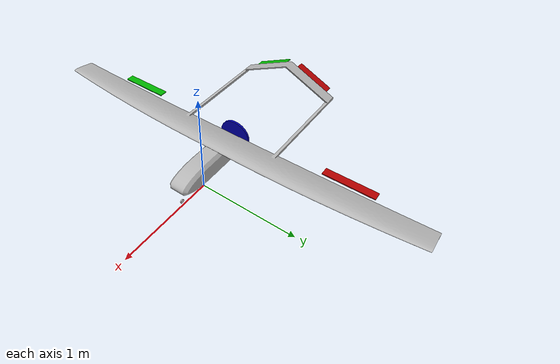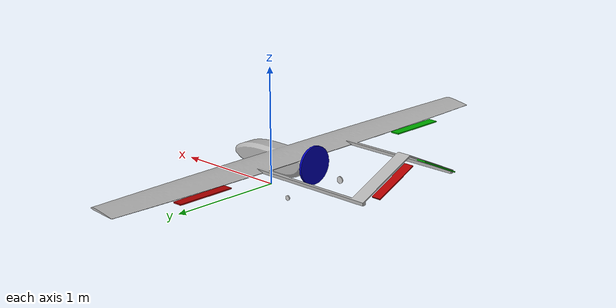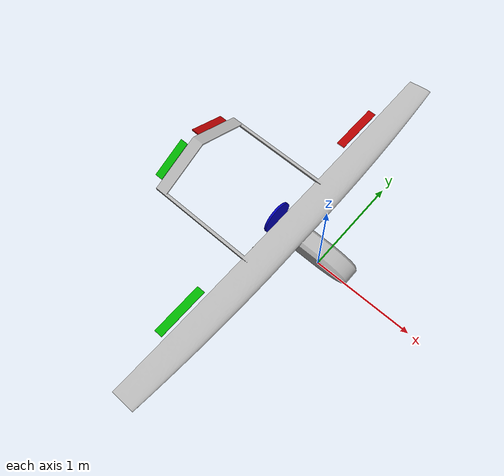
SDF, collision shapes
<?xml version='1.0'?>
<sdf version='1.7'>
  <model name='ifsys'>
    <link name='base_link'>
      <inertial>
        <mass>7</mass>
        <pose>-0.63 0 0.1 0 0 0</pose>
        <inertia>
          <ixx>3</ixx>
          <ixy>0</ixy>
          <ixz>-0.2</ixz>
          <iyy>1.1</iyy>
          <iyz>0</iyz>
          <izz>4</izz>
        </inertia>
      </inertial>
      <pose>0.35 0 0.1 0 0 0</pose>
      <gravity>1</gravity>
      <self_collide>0</self_collide>
      <kinematic>0</kinematic>
      <enable_wind>0</enable_wind>
      <visual name='visual'>
        <pose>0 0 0 0 -0 0</pose>
        <geometry>
          <mesh>
            <uri>./meshes/ifsys.dae</uri>
            <scale>1 1 1</scale>
          </mesh>
        </geometry>
        <material>
          <lighting>1</lighting>
          <ambient>0.3 0.3 0.3 1</ambient>
          <diffuse>0.7 0.7 0.7 1</diffuse>
          <specular>0.01 0.01 0.01 1</specular>
          <emissive>0 0 0 1</emissive>
        </material>
        <transparency>0</transparency>
        <cast_shadows>1</cast_shadows>
      </visual>
      <collision name='collision'>
        <laser_retro>0</laser_retro>
        <max_contacts>10</max_contacts>
        <pose>0 0 0 0 0 0</pose>
        <geometry>
          <mesh>
            <uri>./meshes/ifsys.dae</uri>
            <scale>1 1 1</scale>
          </mesh>
        </geometry>
        <surface>
          <friction>
            <ode>
              <mu>0.1</mu>
              <mu2>0.1</mu2>
              <fdir1>0 0 0</fdir1>
              <slip1>0</slip1>
              <slip2>0</slip2>
            </ode>
            <torsional>
              <coefficient>1</coefficient>
              <patch_radius>0</patch_radius>
              <surface_radius>0</surface_radius>
              <use_patch_radius>1</use_patch_radius>
              <ode>
                <slip>0</slip>
              </ode>
            </torsional>
          </friction>
          <bounce>
            <restitution_coefficient>0</restitution_coefficient>
            <threshold>1e+06</threshold>
          </bounce>
          <contact>
            <collide_without_contact>0</collide_without_contact>
            <collide_without_contact_bitmask>1</collide_without_contact_bitmask>
            <collide_bitmask>1</collide_bitmask>
            <ode>
              <soft_cfm>0</soft_cfm>
              <soft_erp>0.2</soft_erp>
              <kp>1e+13</kp>
              <kd>1</kd>
              <max_vel>0.01</max_vel>
              <min_depth>0</min_depth>
            </ode>
            <bullet>
              <split_impulse>1</split_impulse>
              <split_impulse_penetration_threshold>-0.01</split_impulse_penetration_threshold>
              <soft_cfm>0</soft_cfm>
              <soft_erp>0.2</soft_erp>
              <kp>1e+13</kp>
              <kd>1</kd>
            </bullet>
          </contact>
        </surface>
      </collision>
      <sensor name="magnetometer_sensor" type="magnetometer">
        <always_on>1</always_on>
        <update_rate>100</update_rate>
        <magnetometer>
        <!-- TODO: update to fix units and coordinate system when we move past Harmonic -->
        <!-- See https://github.com/gazebosim/gz-sim/pull/2460 -->
        <!-- 3mgauss RMS: NOTE: noise is in tesla but sensor reports data in gauss -->
        <!-- Noise modeled after IIS2MDC -->
        <x>
            <noise type="gaussian">
            <stddev>0.0001</stddev>
            </noise>
        </x>
        <y>
            <noise type="gaussian">
            <stddev>0.0001</stddev>
            </noise>
        </y>
        <z>
            <noise type="gaussian">
            <stddev>0.0001</stddev>
            </noise>
        </z>
        </magnetometer>
      </sensor>
      <sensor name="imu_sensor" type="imu">
        <always_on>1</always_on>
        <update_rate>250</update_rate>
        <imu>
        <angular_velocity>
            <x>
            <noise type="gaussian">
                <mean>0</mean>
                <stddev>0.0003394</stddev>
                <dynamic_bias_stddev>3.8785e-05</dynamic_bias_stddev>
                <dynamic_bias_correlation_time>1000</dynamic_bias_correlation_time>
            </noise>
            </x>
            <y>
            <noise type="gaussian">
                <mean>0</mean>
                <stddev>0.0003394</stddev>
                <dynamic_bias_stddev>3.8785e-05</dynamic_bias_stddev>
                <dynamic_bias_correlation_time>1000</dynamic_bias_correlation_time>
            </noise>
            </y>
            <z>
            <noise type="gaussian">
                <mean>0</mean>
                <stddev>0.0003394</stddev>
                <dynamic_bias_stddev>3.8785e-05</dynamic_bias_stddev>
                <dynamic_bias_correlation_time>1000</dynamic_bias_correlation_time>
            </noise>
            </z>
        </angular_velocity>
        <linear_acceleration>
            <x>
            <noise type="gaussian">
                <mean>0</mean>
                <stddev>0.004</stddev>
                <dynamic_bias_stddev>0.006</dynamic_bias_stddev>
                <dynamic_bias_correlation_time>300</dynamic_bias_correlation_time>
            </noise>
            </x>
            <y>
            <noise type="gaussian">
                <mean>0</mean>
                <stddev>0.004</stddev>
                <dynamic_bias_stddev>0.006</dynamic_bias_stddev>
                <dynamic_bias_correlation_time>300</dynamic_bias_correlation_time>
            </noise>
            </y>
            <z>
            <noise type="gaussian">
                <mean>0</mean>
                <stddev>0.004</stddev>
                <dynamic_bias_stddev>0.006</dynamic_bias_stddev>
                <dynamic_bias_correlation_time>300</dynamic_bias_correlation_time>
            </noise>
            </z>
        </linear_acceleration>
        </imu>
      </sensor>
      <sensor name="navsat_sensor" type="navsat">
        <always_on>1</always_on>
        <update_rate>30</update_rate>
      </sensor>
      <sensor name="air_pressure_sensor" type="air_pressure">
        <always_on>1</always_on>
        <update_rate>50</update_rate>
        <air_pressure>
        <pressure>
            <noise type="gaussian">
            <mean>0</mean>
            <stddev>0.01</stddev>
            </noise>
        </pressure>
        </air_pressure>
      </sensor>

      <!-- leave for debugging lift-drag CoP -->
      <!-- leave for debugging lift-drag CoP -->

    </link>

    <link name='propeller'>
      <inertial>
        <mass>0.01</mass>
        <inertia>
          <ixx>0.0145833</ixx>
          <ixy>0</ixy>
          <ixz>0</ixz>
          <iyy>0.0145833</iyy>
          <iyz>0</iyz>
          <izz>0.00125</izz>
        </inertia>
        <pose>0 0 0 0 -0 0</pose>
      </inertial>
      <pose relative_to="base_link">-0.83 0 0.18 0 1.57079633 0</pose>
      <gravity>1</gravity>
      <self_collide>0</self_collide>
      <kinematic>0</kinematic>
      <enable_wind>0</enable_wind>
      <visual name='visual'>
        <pose>0 0 0 0 0 0</pose>
        <geometry>
          <mesh>
            <uri>./meshes/iris_prop_ccw.dae</uri>
            <scale>1.6 1.6 1.6</scale>
          </mesh>
        </geometry>
        <material>
          <lighting>1</lighting>
          <ambient>0 0 0.3 1</ambient>
          <diffuse>0 0 0.7 1</diffuse>
          <specular>0.01 0.01 0.01 1</specular>
          <emissive>0 0 0 1</emissive>
        </material>
        <transparency>0</transparency>
        <cast_shadows>1</cast_shadows>
      </visual>
      <collision name='collision'>
        <laser_retro>0</laser_retro>
        <max_contacts>10</max_contacts>
        <pose>0 0 -0.02 0 0 0</pose>
        <geometry>
          <cylinder>
            <radius>0.16</radius>
            <length>0.02</length>
          </cylinder>
        </geometry>
        <surface>
          <friction>
            <ode>
              <mu>1</mu>
              <mu2>1</mu2>
              <fdir1>0 0 0</fdir1>
              <slip1>0</slip1>
              <slip2>0</slip2>
            </ode>
            <torsional>
              <coefficient>1</coefficient>
              <patch_radius>0</patch_radius>
              <surface_radius>0</surface_radius>
              <use_patch_radius>1</use_patch_radius>
              <ode>
                <slip>0</slip>
              </ode>
            </torsional>
          </friction>
          <bounce>
            <restitution_coefficient>0</restitution_coefficient>
            <threshold>1e+06</threshold>
          </bounce>
          <contact>
            <collide_without_contact>0</collide_without_contact>
            <collide_without_contact_bitmask>1</collide_without_contact_bitmask>
            <collide_bitmask>1</collide_bitmask>
            <ode>
              <soft_cfm>0</soft_cfm>
              <soft_erp>0.2</soft_erp>
              <kp>1e+13</kp>
              <kd>1</kd>
              <max_vel>0.01</max_vel>
              <min_depth>0</min_depth>
            </ode>
            <bullet>
              <split_impulse>1</split_impulse>
              <split_impulse_penetration_threshold>-0.01</split_impulse_penetration_threshold>
              <soft_cfm>0</soft_cfm>
              <soft_erp>0.2</soft_erp>
              <kp>1e+13</kp>
              <kd>1</kd>
            </bullet>
          </contact>
        </surface>
      </collision>
    </link>
    <link name='right_aileron'>
      <inertial>
        <mass>0.01</mass>
        <inertia>
          <ixx>0.166667</ixx>
          <ixy>0</ixy>
          <ixz>0</ixz>
          <iyy>0.166667</iyy>
          <iyz>0</iyz>
          <izz>0.166667</izz>
        </inertia>
        <pose>0 0 0 0 -0 0</pose>
      </inertial>
      <pose relative_to="base_link">-0.83 1.2 0.24 0 0 0</pose>
      <gravity>1</gravity>
      <self_collide>0</self_collide>
      <kinematic>0</kinematic>
      <enable_wind>0</enable_wind>
      <visual name='visual'>
        <pose>-0.04 0 0 0 -0 0</pose>
        <geometry>
          <box>
            <size>0.08 0.5 0.01</size>
          </box>
        </geometry>
        <material>
          <lighting>1</lighting>
          <ambient>0.3 0 0 1</ambient>
          <diffuse>0.7 0 0 1</diffuse>
          <specular>0.01 0.01 0.01 1</specular>
          <emissive>0 0 0 1</emissive>
        </material>
        <transparency>0</transparency>
        <cast_shadows>1</cast_shadows>
      </visual>
      <collision name='collision'>
        <laser_retro>0</laser_retro>
        <max_contacts>10</max_contacts>
        <pose>-0.04 0 0 0 -0 0</pose>
        <geometry>
          <box>
            <size>0.08 0.5 0.01</size>
          </box>
        </geometry>
        <surface>
          <friction>
            <ode>
              <mu>1</mu>
              <mu2>1</mu2>
              <fdir1>0 0 0</fdir1>
              <slip1>0</slip1>
              <slip2>0</slip2>
            </ode>
            <torsional>
              <coefficient>1</coefficient>
              <patch_radius>0</patch_radius>
              <surface_radius>0</surface_radius>
              <use_patch_radius>1</use_patch_radius>
              <ode>
                <slip>0</slip>
              </ode>
            </torsional>
          </friction>
          <bounce>
            <restitution_coefficient>0</restitution_coefficient>
            <threshold>1e+06</threshold>
          </bounce>
          <contact>
            <collide_without_contact>0</collide_without_contact>
            <collide_without_contact_bitmask>1</collide_without_contact_bitmask>
            <collide_bitmask>1</collide_bitmask>
            <ode>
              <soft_cfm>0</soft_cfm>
              <soft_erp>0.2</soft_erp>
              <kp>1e+13</kp>
              <kd>1</kd>
              <max_vel>0.01</max_vel>
              <min_depth>0</min_depth>
            </ode>
            <bullet>
              <split_impulse>1</split_impulse>
              <split_impulse_penetration_threshold>-0.01</split_impulse_penetration_threshold>
              <soft_cfm>0</soft_cfm>
              <soft_erp>0.2</soft_erp>
              <kp>1e+13</kp>
              <kd>1</kd>
            </bullet>
          </contact>
        </surface>
      </collision>
    </link>
    <link name='left_aileron'>
      <inertial>
        <mass>0.01</mass>
        <inertia>
          <ixx>0.166667</ixx>
          <ixy>0</ixy>
          <ixz>0</ixz>
          <iyy>0.166667</iyy>
          <iyz>0</iyz>
          <izz>0.166667</izz>
        </inertia>
        <pose>0 0 0 0 -0 0</pose>
      </inertial>
      <pose relative_to="base_link">-0.83 -1.2 0.24 0 0 0</pose>
      <gravity>1</gravity>
      <self_collide>0</self_collide>
      <kinematic>0</kinematic>
      <enable_wind>0</enable_wind>
      <visual name='visual'>
        <pose>-0.04 0 0 0 -0 0</pose>
        <geometry>
          <box>
            <size>0.08 0.5 0.01</size>
          </box>
        </geometry>
        <material>
          <lighting>1</lighting>
          <ambient>0 0.3 0 1</ambient>
          <diffuse>0 0.7 0 1</diffuse>
          <specular>0.01 0.01 0.01 1</specular>
          <emissive>0 0 0 1</emissive>
        </material>
        <transparency>0</transparency>
        <cast_shadows>1</cast_shadows>
      </visual>
      <collision name='collision'>
        <laser_retro>0</laser_retro>
        <max_contacts>10</max_contacts>
        <pose>-0.04 0 0 0 -0 0</pose>
        <geometry>
          <box>
            <size>0.08 0.5 0.01</size>
          </box>
        </geometry>
        <surface>
          <friction>
            <ode>
              <mu>1</mu>
              <mu2>1</mu2>
              <fdir1>0 0 0</fdir1>
              <slip1>0</slip1>
              <slip2>0</slip2>
            </ode>
            <torsional>
              <coefficient>1</coefficient>
              <patch_radius>0</patch_radius>
              <surface_radius>0</surface_radius>
              <use_patch_radius>1</use_patch_radius>
              <ode>
                <slip>0</slip>
              </ode>
            </torsional>
          </friction>
          <bounce>
            <restitution_coefficient>0</restitution_coefficient>
            <threshold>1e+06</threshold>
          </bounce>
          <contact>
            <collide_without_contact>0</collide_without_contact>
            <collide_without_contact_bitmask>1</collide_without_contact_bitmask>
            <collide_bitmask>1</collide_bitmask>
            <ode>
              <soft_cfm>0</soft_cfm>
              <soft_erp>0.2</soft_erp>
              <kp>1e+13</kp>
              <kd>1</kd>
              <max_vel>0.01</max_vel>
              <min_depth>0</min_depth>
            </ode>
            <bullet>
              <split_impulse>1</split_impulse>
              <split_impulse_penetration_threshold>-0.01</split_impulse_penetration_threshold>
              <soft_cfm>0</soft_cfm>
              <soft_erp>0.2</soft_erp>
              <kp>1e+13</kp>
              <kd>1</kd>
            </bullet>
          </contact>
        </surface>
      </collision>
    </link>
    <link name='left_a-tail'>
      <inertial>
        <mass>0.01</mass>
        <inertia>
          <ixx>0.166667</ixx>
          <ixy>0</ixy>
          <ixz>0</ixz>
          <iyy>0.166667</iyy>
          <iyz>0</iyz>
          <izz>0.166667</izz>
        </inertia>
        <pose>0 0 0 0 -0 0</pose>
      </inertial>
      <pose relative_to="base_link">-1.86 -0.25 0.36 0.4363 0 0</pose>
      <gravity>1</gravity>
      <self_collide>0</self_collide>
      <kinematic>0</kinematic>
      <enable_wind>0</enable_wind>
      <visual name='visual'>
        <pose>-0.04 0 0 0 -0 0</pose>
        <geometry>
          <box>
            <size>0.08 0.4 0.01</size>
          </box>
        </geometry>
        <material>
          <lighting>1</lighting>
          <ambient>0 0.3 0 1</ambient>
          <diffuse>0 0.7 0 1</diffuse>
          <specular>0.01 0.01 0.01 1</specular>
          <emissive>0 0 0 1</emissive>
        </material>
        <transparency>0</transparency>
        <cast_shadows>1</cast_shadows>
      </visual>
      <collision name='collision'>
        <laser_retro>0</laser_retro>
        <max_contacts>10</max_contacts>
        <pose>-0.04 0 0 0 -0 0</pose>
        <geometry>
          <box>
            <size>0.08 0.4 0.01</size>
          </box>
        </geometry>
        <surface>
          <friction>
            <ode>
              <mu>1</mu>
              <mu2>1</mu2>
              <fdir1>0 0 0</fdir1>
              <slip1>0</slip1>
              <slip2>0</slip2>
            </ode>
            <torsional>
              <coefficient>1</coefficient>
              <patch_radius>0</patch_radius>
              <surface_radius>0</surface_radius>
              <use_patch_radius>1</use_patch_radius>
              <ode>
                <slip>0</slip>
              </ode>
            </torsional>
          </friction>
          <bounce>
            <restitution_coefficient>0</restitution_coefficient>
            <threshold>1e+06</threshold>
          </bounce>
          <contact>
            <collide_without_contact>0</collide_without_contact>
            <collide_without_contact_bitmask>1</collide_without_contact_bitmask>
            <collide_bitmask>1</collide_bitmask>
            <ode>
              <soft_cfm>0</soft_cfm>
              <soft_erp>0.2</soft_erp>
              <kp>1e+13</kp>
              <kd>1</kd>
              <max_vel>0.01</max_vel>
              <min_depth>0</min_depth>
            </ode>
            <bullet>
              <split_impulse>1</split_impulse>
              <split_impulse_penetration_threshold>-0.01</split_impulse_penetration_threshold>
              <soft_cfm>0</soft_cfm>
              <soft_erp>0.2</soft_erp>
              <kp>1e+13</kp>
              <kd>1</kd>
            </bullet>
          </contact>
        </surface>
      </collision>
    </link>
    <link name='right_a-tail'>
      <inertial>
        <mass>0.01</mass>
        <inertia>
          <ixx>0.166667</ixx>
          <ixy>0</ixy>
          <ixz>0</ixz>
          <iyy>0.166667</iyy>
          <iyz>0</iyz>
          <izz>0.166667</izz>
        </inertia>
        <pose>0 0 0 0 -0 0</pose>
      </inertial>
      <pose relative_to="base_link">-1.86 0.25 0.36 -0.4363 0 0</pose>
      <gravity>1</gravity>
      <self_collide>0</self_collide>
      <kinematic>0</kinematic>
      <enable_wind>0</enable_wind>
      <visual name='visual'>
        <pose>-0.04 0 0 0 -0 0</pose>
        <geometry>
          <box>
            <size>0.08 0.4 0.01</size>
          </box>
        </geometry>
        <material>
          <lighting>1</lighting>
          <ambient>0.3 0 0 1</ambient>
          <diffuse>0.7 0 0 1</diffuse>
          <specular>0.01 0.01 0.01 1</specular>
          <emissive>0 0 0 1</emissive>
        </material>
        <transparency>0</transparency>
        <cast_shadows>1</cast_shadows>
      </visual>
      <collision name='collision'>
        <laser_retro>0</laser_retro>
        <max_contacts>10</max_contacts>
        <pose>-0.04 0 0 0 -0 0</pose>
        <geometry>
          <box>
            <size>0.08 0.4 0.01</size>
          </box>
        </geometry>
        <surface>
          <friction>
            <ode>
              <mu>1</mu>
              <mu2>1</mu2>
              <fdir1>0 0 0</fdir1>
              <slip1>0</slip1>
              <slip2>0</slip2>
            </ode>
            <torsional>
              <coefficient>1</coefficient>
              <patch_radius>0</patch_radius>
              <surface_radius>0</surface_radius>
              <use_patch_radius>1</use_patch_radius>
              <ode>
                <slip>0</slip>
              </ode>
            </torsional>
          </friction>
          <bounce>
            <restitution_coefficient>0</restitution_coefficient>
            <threshold>1e+06</threshold>
          </bounce>
          <contact>
            <collide_without_contact>0</collide_without_contact>
            <collide_without_contact_bitmask>1</collide_without_contact_bitmask>
            <collide_bitmask>1</collide_bitmask>
            <ode>
              <soft_cfm>0</soft_cfm>
              <soft_erp>0.2</soft_erp>
              <kp>1e+13</kp>
              <kd>1</kd>
              <max_vel>0.01</max_vel>
              <min_depth>0</min_depth>
            </ode>
            <bullet>
              <split_impulse>1</split_impulse>
              <split_impulse_penetration_threshold>-0.01</split_impulse_penetration_threshold>
              <soft_cfm>0</soft_cfm>
              <soft_erp>0.2</soft_erp>
              <kp>1e+13</kp>
              <kd>1</kd>
            </bullet>
          </contact>
        </surface>
      </collision>
    </link>

   <link name='frontwheel'>
      <inertial>
        <mass>0.01</mass>
        <inertia>
          <ixx>0.145833</ixx>
          <ixy>0</ixy>
          <ixz>0</ixz>
          <iyy>0.145833</iyy>
          <iyz>0</iyz>
          <izz>0.125</izz>
        </inertia>
        <pose>0 0 0 0 0 0</pose>
      </inertial>
      <pose relative_to="base_link">-0.05 0 -0.04 1.57079633 0 0</pose>
      <gravity>1</gravity>
      <self_collide>0</self_collide>
      <kinematic>0</kinematic>
      <enable_wind>0</enable_wind>
      <visual name='visual'>
        <pose>0 0 0 0 0 0</pose>
        <geometry>
          <cylinder>
            <radius>0.03</radius>
            <length>0.01</length>
          </cylinder>
        </geometry>
        <material>
          <ambient>0.6 0.6 0.6 1</ambient>
          <diffuse>0.8 0.8 0.8 1</diffuse>
          <specular>0.01 0.01 0.01 1</specular>
          <emissive>0 0 0 1</emissive>
        </material>
        <transparency>0</transparency>
        <cast_shadows>1</cast_shadows>
      </visual>
      <collision name='collision'>
        <laser_retro>0</laser_retro>
        <max_contacts>10</max_contacts>
        <pose>0 0 0 0 -0 0</pose>
        <geometry>
          <cylinder>
            <radius>0.02</radius>
            <length>0.01</length>
          </cylinder>
        </geometry>
        <surface>
          <friction>
            <ode>
              <mu>1</mu>
              <mu2>1</mu2>
              <fdir1>0 0 0</fdir1>
              <slip1>0</slip1>
              <slip2>0</slip2>
            </ode>
          </friction>
          <bounce>
            <restitution_coefficient>0</restitution_coefficient>
            <threshold>1e+06</threshold>
          </bounce>
          <contact>
            <collide_without_contact>0</collide_without_contact>
            <collide_without_contact_bitmask>1</collide_without_contact_bitmask>
            <collide_bitmask>1</collide_bitmask>
            <ode>
              <soft_cfm>0</soft_cfm>
              <soft_erp>0.2</soft_erp>
              <kp>1e+13</kp>
              <kd>1</kd>
              <max_vel>0.01</max_vel>
              <min_depth>0</min_depth>
            </ode>
            <bullet>
              <split_impulse>1</split_impulse>
              <split_impulse_penetration_threshold>-0.01</split_impulse_penetration_threshold>
              <soft_cfm>0</soft_cfm>
              <soft_erp>0.2</soft_erp>
              <kp>1e+13</kp>
              <kd>1</kd>
            </bullet>
          </contact>
        </surface>
      </collision>
    </link>

    <link name='leftwheel'>
      <inertial>
        <mass>0.01</mass>
        <inertia>
          <ixx>0.145833</ixx>
          <ixy>0</ixy>
          <ixz>0</ixz>
          <iyy>0.145833</iyy>
          <iyz>0</iyz>
          <izz>0.125</izz>
        </inertia>
        <pose>0 0 0 0 0 0</pose>
      </inertial>
      <pose relative_to="base_link">-0.85 -0.3 -0.02 1.57079633 0 0</pose>
      <gravity>1</gravity>
      <self_collide>0</self_collide>
      <kinematic>0</kinematic>
      <enable_wind>0</enable_wind>
      <visual name='visual'>
        <pose>0 0 0 0 0 0</pose>
        <geometry>
          <cylinder>
            <radius>0.03</radius>
            <length>0.01</length>
          </cylinder>
        </geometry>
        <material>
          <ambient>0.6 0.6 0.6 1</ambient>
          <diffuse>0.8 0.8 0.8 1</diffuse>
          <specular>0.01 0.01 0.01 1</specular>
          <emissive>0 0 0 1</emissive>
        </material>
        <transparency>0</transparency>
        <cast_shadows>1</cast_shadows>
      </visual>
      <collision name='collision'>
        <laser_retro>0</laser_retro>
        <max_contacts>10</max_contacts>
        <pose>0 0 0 0 -0 0</pose>
        <geometry>
          <cylinder>
            <radius>0.03</radius>
            <length>0.01</length>
          </cylinder>
        </geometry>
        <surface>
          <friction>
            <ode>
              <mu>1</mu>
              <mu2>1</mu2>
              <fdir1>0 0 0</fdir1>
              <slip1>0</slip1>
              <slip2>0</slip2>
            </ode>
          </friction>
          <bounce>
            <restitution_coefficient>0</restitution_coefficient>
            <threshold>1e+06</threshold>
          </bounce>
          <contact>
            <collide_without_contact>0</collide_without_contact>
            <collide_without_contact_bitmask>1</collide_without_contact_bitmask>
            <collide_bitmask>1</collide_bitmask>
            <ode>
              <soft_cfm>0</soft_cfm>
              <soft_erp>0.2</soft_erp>
              <kp>1e+13</kp>
              <kd>1</kd>
              <max_vel>0.01</max_vel>
              <min_depth>0</min_depth>
            </ode>
            <bullet>
              <split_impulse>1</split_impulse>
              <split_impulse_penetration_threshold>-0.01</split_impulse_penetration_threshold>
              <soft_cfm>0</soft_cfm>
              <soft_erp>0.2</soft_erp>
              <kp>1e+13</kp>
              <kd>1</kd>
            </bullet>
          </contact>
        </surface>
      </collision>
    </link>

    <link name='rightwheel'>
      <inertial>
        <mass>0.01</mass>
        <inertia>
          <ixx>0.145833</ixx>
          <ixy>0</ixy>
          <ixz>0</ixz>
          <iyy>0.145833</iyy>
          <iyz>0</iyz>
          <izz>0.125</izz>
        </inertia>
        <pose>0 0 0 0 0 0</pose>
      </inertial>
      <pose relative_to="base_link">-0.85 0.3 -0.02 1.57079633 0 0</pose>
      <gravity>1</gravity>
      <self_collide>0</self_collide>
      <kinematic>0</kinematic>
      <enable_wind>0</enable_wind>
      <visual name='visual'>
        <pose>0 0 0 0 0 0</pose>
        <geometry>
          <cylinder>
            <radius>0.02</radius>
            <length>0.01</length>
          </cylinder>
        </geometry>
        <material>
          <ambient>0.6 0.6 0.6 1</ambient>
          <diffuse>0.8 0.8 0.8 1</diffuse>
          <specular>0.01 0.01 0.01 1</specular>
          <emissive>0 0 0 1</emissive>
        </material>
        <transparency>0</transparency>
        <cast_shadows>1</cast_shadows>
      </visual>
      <collision name='collision'>
        <laser_retro>0</laser_retro>
        <max_contacts>10</max_contacts>
        <pose>0 0 0 0 0 0</pose>
        <geometry>
          <cylinder>
            <radius>0.02</radius>
            <length>0.01</length>
          </cylinder>
        </geometry>
        <surface>
          <friction>
            <ode>
              <mu>1</mu>
              <mu2>1</mu2>
              <fdir1>0 0 0</fdir1>
              <slip1>0</slip1>
              <slip2>0</slip2>
            </ode>
          </friction>
          <bounce>
            <restitution_coefficient>0</restitution_coefficient>
            <threshold>1e+06</threshold>
          </bounce>
          <contact>
            <collide_without_contact>0</collide_without_contact>
            <collide_without_contact_bitmask>1</collide_without_contact_bitmask>
            <collide_bitmask>1</collide_bitmask>
            <ode>
              <soft_cfm>0</soft_cfm>
              <soft_erp>0.2</soft_erp>
              <kp>1e+13</kp>
              <kd>1</kd>
              <max_vel>0.01</max_vel>
              <min_depth>0</min_depth>
            </ode>
            <bullet>
              <split_impulse>1</split_impulse>
              <split_impulse_penetration_threshold>-0.01</split_impulse_penetration_threshold>
              <soft_cfm>0</soft_cfm>
              <soft_erp>0.2</soft_erp>
              <kp>1e+13</kp>
              <kd>1</kd>
            </bullet>
          </contact>
        </surface>
      </collision>
    </link>

    <joint name='left_a-tail_joint' type='revolute'>
      <parent>base_link</parent>
      <child>left_a-tail</child>
      <pose>0 0 0 0 -0 0</pose>
      <axis>
        <xyz>0 1 0</xyz>
        <limit>
          <lower>-1.79769e+308</lower>
          <upper>1.79769e+308</upper>
          <effort>-1</effort>
          <velocity>-1</velocity>
        </limit>
        <dynamics>
          <spring_reference>0</spring_reference>
          <spring_stiffness>0</spring_stiffness>
          <damping>1</damping>
          <friction>0</friction>
        </dynamics>
      </axis>
      <physics>
        <ode>
          <limit>
            <cfm>0</cfm>
            <erp>0.2</erp>
          </limit>
          <suspension>
            <cfm>0</cfm>
            <erp>0.2</erp>
          </suspension>
        </ode>
      </physics>
    </joint>
    <joint name='right_a-tail_joint' type='revolute'>
      <parent>base_link</parent>
      <child>right_a-tail</child>
      <pose>0 0 0 0 -0 0</pose>
      <axis>
        <xyz>0 1 0</xyz>
        <limit>
          <lower>-1.79769e+308</lower>
          <upper>1.79769e+308</upper>
          <effort>-1</effort>
          <velocity>-1</velocity>
        </limit>
        <dynamics>
          <spring_reference>0</spring_reference>
          <spring_stiffness>0</spring_stiffness>
          <damping>1</damping>
          <friction>0</friction>
        </dynamics>
      </axis>
      <physics>
        <ode>
          <limit>
            <cfm>0</cfm>
            <erp>0.2</erp>
          </limit>
          <suspension>
            <cfm>0</cfm>
            <erp>0.2</erp>
          </suspension>
        </ode>
      </physics>
    </joint>
    <joint name='propeller_joint' type='revolute'>
      <parent>base_link</parent>
      <child>propeller</child>
      <pose>0 0 0 0 0 0</pose>
      <axis>
        <xyz>0 0 1</xyz>
        <limit>
          <lower>-1.79769e+308</lower>
          <upper>1.79769e+308</upper>
          <effort>-1</effort>
          <velocity>-1</velocity>
        </limit>
        <dynamics>
          <spring_reference>0</spring_reference>
          <spring_stiffness>0</spring_stiffness>
          <damping>0</damping>
        </dynamics>
      </axis>
      <physics>
        <ode>
          <limit>
            <cfm>0</cfm>
            <erp>0.2</erp>
          </limit>
          <suspension>
            <cfm>0</cfm>
            <erp>0.2</erp>
          </suspension>
        </ode>
      </physics>
    </joint>
    <joint name='right_aileron_joint' type='revolute'>
      <parent>base_link</parent>
      <child>right_aileron</child>
      <pose>0 0 0 0 -0 0</pose>
      <axis>
        <xyz>0 1 0</xyz>
        <limit>
          <lower>-0.78</lower>
          <upper>0.78</upper>
          <effort>-1</effort>
          <velocity>-1</velocity>
        </limit>
        <dynamics>
          <spring_reference>0</spring_reference>
          <spring_stiffness>0</spring_stiffness>
          <damping>1</damping>
          <friction>0</friction>
        </dynamics>
      </axis>
      <physics>
        <ode>
          <limit>
            <cfm>0</cfm>
            <erp>0.2</erp>
          </limit>
          <suspension>
            <cfm>0</cfm>
            <erp>0.2</erp>
          </suspension>
        </ode>
      </physics>
    </joint>
    <joint name='left_aileron_joint' type='revolute'>
      <parent>base_link</parent>
      <child>left_aileron</child>
      <pose>0 0 0 0 -0 0</pose>
      <axis>
        <xyz>0 1 0</xyz>
        <limit>
          <lower>-0.78</lower>
          <upper>0.78</upper>
          <effort>-1</effort>
          <velocity>-1</velocity>
        </limit>
        <dynamics>
          <spring_reference>0</spring_reference>
          <spring_stiffness>0</spring_stiffness>
          <damping>1</damping>
          <friction>0</friction>
        </dynamics>
      </axis>
      <physics>
        <ode>
          <limit>
            <cfm>0</cfm>
            <erp>0.2</erp>
          </limit>
          <suspension>
            <cfm>0</cfm>
            <erp>0.2</erp>
          </suspension>
        </ode>
      </physics>
    </joint>

    <joint name='frontwheel_joint' type='revolute'>
      <parent>base_link</parent>
      <child>frontwheel</child>
      <pose>0 0 0 0 0 0</pose>
      <axis>
        <xyz>0 0 1</xyz>
        <limit>
          <lower>-1.79769e+308</lower>
          <upper>1.79769e+308</upper>
          <effort>-1</effort>
          <velocity>-1</velocity>
        </limit>
        <dynamics>
          <friction>0.02</friction>
          <spring_reference>0</spring_reference>
          <spring_stiffness>0</spring_stiffness>
        </dynamics>
      </axis>
    </joint>

    <joint name='leftwheel_joint' type='revolute'>
      <parent>base_link</parent>
      <child>leftwheel</child>
      <pose>0 0 0 0 0 0</pose>
      <axis>
        <xyz>0 0 1</xyz>
        <limit>
          <lower>-1.79769e+308</lower>
          <upper>1.79769e+308</upper>
          <effort>-1</effort>
          <velocity>-1</velocity>
        </limit>
        <dynamics>
          <friction>0.02</friction>
          <spring_reference>0</spring_reference>
          <spring_stiffness>0</spring_stiffness>
        </dynamics>
      </axis>
    </joint>

    <joint name='rightwheel_joint' type='revolute'>
      <parent>base_link</parent>
      <child>rightwheel</child>
      <pose>0 0 0 0 0 0</pose>
      <axis>
        <xyz>0 0 1</xyz>
        <limit>
          <lower>-1.79769e+308</lower>
          <upper>1.79769e+308</upper>
          <effort>-1</effort>
          <velocity>-1</velocity>
        </limit>
        <dynamics>
          <friction>0.02</friction>
          <spring_reference>0</spring_reference>
          <spring_stiffness>0</spring_stiffness>
        </dynamics>
      </axis>
    </joint>

    <static>0</static>
    <allow_auto_disable>1</allow_auto_disable>
    <plugin
    filename="gz-sim-joint-position-controller-system" name="gz::sim::systems::JointPositionController">
        <joint_name>left_aileron_joint</joint_name>
        <sub_topic>servo_0</sub_topic>
        <p_gain>10.0</p_gain>
    </plugin>

    <plugin
    filename="gz-sim-joint-position-controller-system" name="gz::sim::systems::JointPositionController">
        <joint_name>right_aileron_joint</joint_name>
        <sub_topic>servo_1</sub_topic>
        <p_gain>10.0</p_gain>
    </plugin>

    <plugin
    filename="gz-sim-joint-position-controller-system" name="gz::sim::systems::JointPositionController">
        <joint_name>left_a-tail_joint</joint_name>
        <sub_topic>servo_2</sub_topic>
        <p_gain>10.0</p_gain>
    </plugin>

    <plugin
    filename="gz-sim-joint-position-controller-system" name="gz::sim::systems::JointPositionController">
        <joint_name>right_a-tail_joint</joint_name>
        <sub_topic>servo_3</sub_topic>
        <p_gain>10.0</p_gain>
    </plugin>

    <plugin filename="gz-sim-multicopter-motor-model-system" name="gz::sim::systems::MulticopterMotorModel">
            <jointName>propeller_joint</jointName>
            <linkName>propeller</linkName>
            <turningDirection>cw</turningDirection>
            <timeConstantUp>0.0125</timeConstantUp>
            <timeConstantDown>0.025</timeConstantDown>
            <maxRotVelocity>1000</maxRotVelocity>
            <motorConstant>1.0e-04</motorConstant>
            <momentConstant>0.016</momentConstant>
            <commandSubTopic>command/motor_speed</commandSubTopic>
            <motorNumber>0</motorNumber>
            <rotorDragCoefficient>8.06428e-05</rotorDragCoefficient>
            <rollingMomentCoefficient>1e-06</rollingMomentCoefficient>
            <rotorVelocitySlowdownSim>10</rotorVelocitySlowdownSim>
            <motorType>velocity</motorType>
        </plugin>

        <plugin filename="gz-sim-lift-drag-system" name="gz::sim::systems::LiftDrag">
            <a0>-0.05984281113</a0>
            <cla>7</cla>
            <cda>1.5</cda>
            <cma>0.0</cma>
            <alpha_stall>0.3391428111</alpha_stall>
            <cla_stall>-3.85</cla_stall>
            <cda_stall>-0.9233984055</cda_stall>
            <cma_stall>0</cma_stall>
            <cp>-0.7 -1 0.2</cp>
            <area>0.6</area>
            <air_density>1.2041</air_density>
            <forward>1 0 0</forward>
            <upward>0 0 1</upward>
            <link_name>base_link</link_name>
            <control_joint_name>left_aileron_joint</control_joint_name>
            <control_joint_rad_to_cl>-0.3</control_joint_rad_to_cl>
        </plugin>

        <plugin filename="gz-sim-lift-drag-system" name="gz::sim::systems::LiftDrag">
            <a0>-0.05984281113</a0>
            <cla>7</cla>
            <cda>1.5</cda>
            <cma>0.0</cma>
            <alpha_stall>0.3391428111</alpha_stall>
            <cla_stall>-3.85</cla_stall>
            <cda_stall>-0.9233984055</cda_stall>
            <cma_stall>0</cma_stall>
            <cp>-0.7 1 0.2</cp>
            <area>0.6</area>
            <air_density>1.2041</air_density>
            <forward>1 0 0</forward>
            <upward>0 0 1</upward>
            <link_name>base_link</link_name>
            <control_joint_name>right_aileron_joint</control_joint_name>
            <control_joint_rad_to_cl>-0.3</control_joint_rad_to_cl>
        </plugin>

        <plugin filename="gz-sim-lift-drag-system" name="gz::sim::systems::LiftDrag">
            <a0>-0.02</a0>
            <cla>4.752798721</cla>
            <cda>0.6417112299</cda>
            <cma>0.0</cma>
            <alpha_stall>0.3391428111</alpha_stall>
            <cla_stall>-3.85</cla_stall>
            <cda_stall>-0.9233984055</cda_stall>
            <cma_stall>0</cma_stall>
            <cp>-1.85 -0.3 0.3</cp>
            <area>0.1</area>
            <air_density>1.2041</air_density>
            <forward>1 0 0</forward>
            <upward>0 1 1</upward>
            <link_name>base_link</link_name>
            <control_joint_name>left_a-tail_joint</control_joint_name>
            <control_joint_rad_to_cl>-0.5</control_joint_rad_to_cl>
        </plugin>

        <plugin filename="gz-sim-lift-drag-system" name="gz::sim::systems::LiftDrag">
            <a0>-0.02</a0>
            <cla>4.752798721</cla>
            <cda>0.6417112299</cda>
            <cma>0.0</cma>
            <alpha_stall>0.3391428111</alpha_stall>
            <cla_stall>-3.85</cla_stall>
            <cda_stall>-0.9233984055</cda_stall>
            <cma_stall>0</cma_stall>
            <cp>-1.85 0.3 0.3</cp>
            <area>0.1</area>
            <air_density>1.2041</air_density>
            <forward>1 0 0</forward>
            <upward>0 1 1</upward>
            <link_name>base_link</link_name>
            <control_joint_name>right_a-tail_joint</control_joint_name>
            <control_joint_rad_to_cl>-0.5</control_joint_rad_to_cl>
        </plugin>
  </model>
</sdf>
